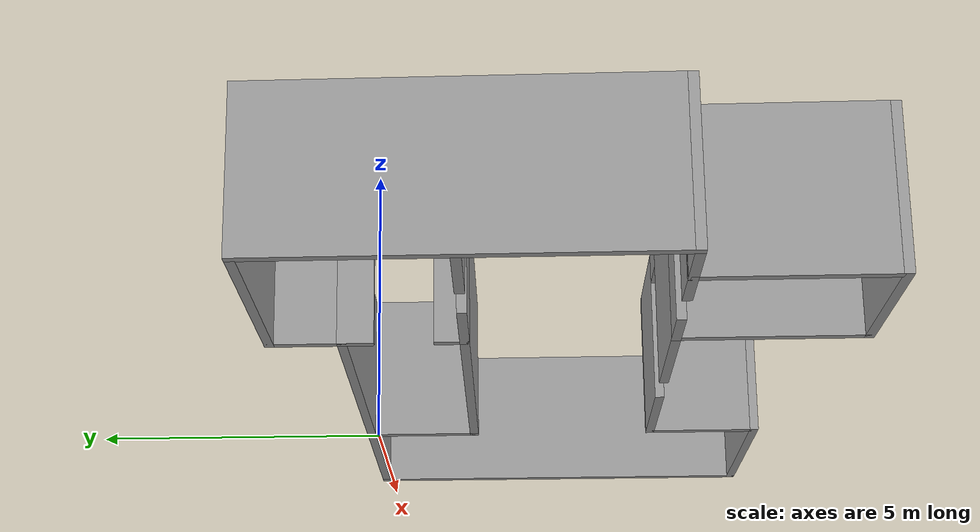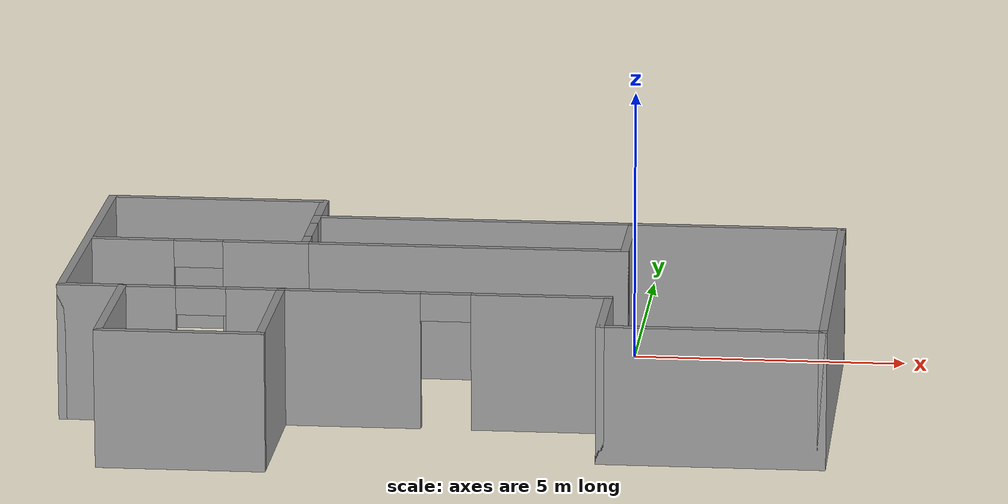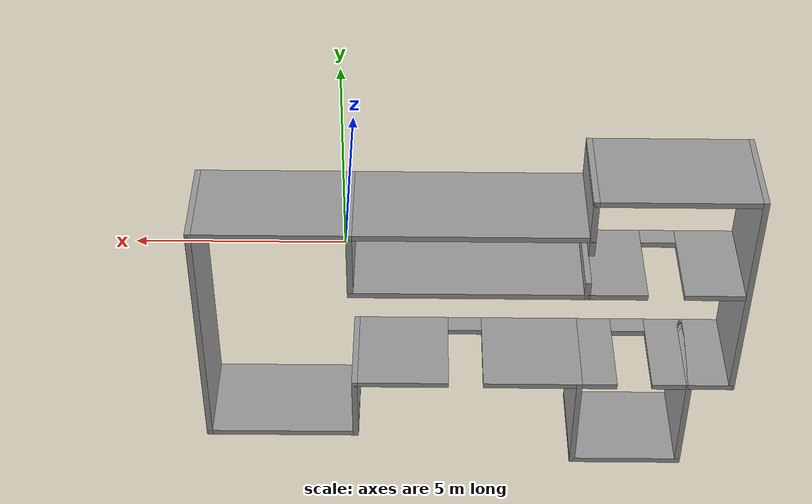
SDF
<?xml version='1.0'?>
<sdf version='1.6'>
  <model name='base'>
    <pose frame=''>-3.05362 -3.25094 0 0 -0 0</pose>
    <link name='Wall_10'>
      <collision name='Wall_10_Collision'>
        <geometry>
          <box>
            <size>4 0.15 2.5</size>
          </box>
        </geometry>
        <pose frame=''>0 0 1.25 0 -0 0</pose>
      </collision>
      <visual name='Wall_10_Visual'>
        <pose frame=''>0 0 1.25 0 -0 0</pose>
        <geometry>
          <box>
            <size>4 0.15 2.5</size>
          </box>
        </geometry>
        <material>
          <script>
            <uri>file://media/materials/scripts/gazebo.material</uri>
            <name>Gazebo/Grey</name>
          </script>
          <ambient>1 1 1 1</ambient>
        </material>
        <meta>
          <layer>0</layer>
        </meta>
      </visual>
      <pose frame=''>4.92011 3.375 0 0 -0 3.14159</pose>
    </link>
    <link name='Wall_11'>
      <collision name='Wall_11_Collision'>
        <geometry>
          <box>
            <size>2 0.15 2.5</size>
          </box>
        </geometry>
        <pose frame=''>0 0 1.25 0 -0 0</pose>
      </collision>
      <visual name='Wall_11_Visual'>
        <pose frame=''>0 0 1.25 0 -0 0</pose>
        <geometry>
          <box>
            <size>2 0.15 2.5</size>
          </box>
        </geometry>
        <material>
          <script>
            <uri>file://media/materials/scripts/gazebo.material</uri>
            <name>Gazebo/Grey</name>
          </script>
          <ambient>1 1 1 1</ambient>
        </material>
        <meta>
          <layer>0</layer>
        </meta>
      </visual>
      <pose frame=''>2.99511 2.45 0 0 0 -1.5708</pose>
    </link>
    <link name='Wall_12'>
      <collision name='Wall_12_Collision'>
        <geometry>
          <box>
            <size>6 0.15 2.5</size>
          </box>
        </geometry>
        <pose frame=''>0 0 1.25 0 -0 0</pose>
      </collision>
      <visual name='Wall_12_Visual'>
        <pose frame=''>0 0 1.25 0 -0 0</pose>
        <geometry>
          <box>
            <size>6 0.15 2.5</size>
          </box>
        </geometry>
        <material>
          <script>
            <uri>file://media/materials/scripts/gazebo.material</uri>
            <name>Gazebo/Grey</name>
          </script>
          <ambient>1 1 1 1</ambient>
        </material>
        <meta>
          <layer>0</layer>
        </meta>
      </visual>
      <pose frame=''>0.070114 1.525 0 0 -0 3.14159</pose>
    </link>
    <link name='Wall_18'>
      <collision name='Wall_18_Collision'>
        <geometry>
          <box>
            <size>2 0.15 2.5</size>
          </box>
        </geometry>
        <pose frame=''>0 0 1.25 0 -0 0</pose>
      </collision>
      <visual name='Wall_18_Visual'>
        <pose frame=''>0 0 1.25 0 -0 0</pose>
        <geometry>
          <box>
            <size>2 0.15 2.5</size>
          </box>
        </geometry>
        <material>
          <script>
            <uri>file://media/materials/scripts/gazebo.material</uri>
            <name>Gazebo/Grey</name>
          </script>
          <ambient>1 1 1 1</ambient>
        </material>
        <meta>
          <layer>0</layer>
        </meta>
      </visual>
      <pose frame=''>2.95489 -2.55 0 0 -0 1.5708</pose>
    </link>
    <link name='Wall_19'>
      <pose frame=''>0.029886 -1.625 0 0 -0 3.14159</pose>
      <visual name='Wall_19_Visual_0'>
        <pose frame=''>-1.73932 0 1.25 0 -0 0</pose>
        <geometry>
          <box>
            <size>2.52135 0.15 2.5</size>
          </box>
        </geometry>
        <material>
          <script>
            <uri>file://media/materials/scripts/gazebo.material</uri>
            <name>Gazebo/Grey</name>
          </script>
          <ambient>1 1 1 1</ambient>
        </material>
        <meta>
          <layer>0</layer>
        </meta>
      </visual>
      <collision name='Wall_19_Collision_0'>
        <geometry>
          <box>
            <size>2.52135 0.15 2.5</size>
          </box>
        </geometry>
        <pose frame=''>-1.73932 0 1.25 0 -0 0</pose>
      </collision>
      <visual name='Wall_19_Visual_1'>
        <pose frame=''>1.71068 0 1.25 0 -0 0</pose>
        <geometry>
          <box>
            <size>2.57865 0.15 2.5</size>
          </box>
        </geometry>
        <material>
          <script>
            <uri>file://media/materials/scripts/gazebo.material</uri>
            <name>Gazebo/Grey</name>
          </script>
          <ambient>1 1 1 1</ambient>
        </material>
        <meta>
          <layer>0</layer>
        </meta>
      </visual>
      <collision name='Wall_19_Collision_1'>
        <geometry>
          <box>
            <size>2.57865 0.15 2.5</size>
          </box>
        </geometry>
        <pose frame=''>1.71068 0 1.25 0 -0 0</pose>
      </collision>
      <visual name='Wall_19_Visual_2'>
        <pose frame=''>-0.028646 0 2.25 0 -0 0</pose>
        <geometry>
          <box>
            <size>0.9 0.15 0.5</size>
          </box>
        </geometry>
        <material>
          <script>
            <uri>file://media/materials/scripts/gazebo.material</uri>
            <name>Gazebo/Grey</name>
          </script>
          <ambient>1 1 1 1</ambient>
        </material>
        <meta>
          <layer>0</layer>
        </meta>
      </visual>
      <collision name='Wall_19_Collision_2'>
        <geometry>
          <box>
            <size>0.9 0.15 0.5</size>
          </box>
        </geometry>
        <pose frame=''>-0.028646 0 2.25 0 -0 0</pose>
      </collision>
    </link>
    <link name='Wall_20'>
      <collision name='Wall_20_Collision'>
        <geometry>
          <box>
            <size>3 0.15 2.5</size>
          </box>
        </geometry>
        <pose frame=''>0 0 1.25 0 -0 0</pose>
      </collision>
      <visual name='Wall_20_Visual'>
        <pose frame=''>0 0 1.25 0 -0 0</pose>
        <geometry>
          <box>
            <size>3 0.15 2.5</size>
          </box>
        </geometry>
        <material>
          <script>
            <uri>file://media/materials/scripts/gazebo.material</uri>
            <name>Gazebo/Grey</name>
          </script>
          <ambient>1 1 1 1</ambient>
        </material>
        <meta>
          <layer>0</layer>
        </meta>
      </visual>
      <pose frame=''>-2.89511 -3.05 0 0 0 -1.5708</pose>
    </link>
    <link name='Wall_21'>
      <collision name='Wall_21_Collision'>
        <geometry>
          <box>
            <size>3 0.15 2.5</size>
          </box>
        </geometry>
        <pose frame=''>0 0 1.25 0 -0 0</pose>
      </collision>
      <visual name='Wall_21_Visual'>
        <pose frame=''>0 0 1.25 0 -0 0</pose>
        <geometry>
          <box>
            <size>3 0.15 2.5</size>
          </box>
        </geometry>
        <material>
          <script>
            <uri>file://media/materials/scripts/gazebo.material</uri>
            <name>Gazebo/Grey</name>
          </script>
          <ambient>1 1 1 1</ambient>
        </material>
        <meta>
          <layer>0</layer>
        </meta>
      </visual>
      <pose frame=''>-4.32011 -4.475 0 0 -0 3.14159</pose>
    </link>
    <link name='Wall_22'>
      <collision name='Wall_22_Collision'>
        <geometry>
          <box>
            <size>3 0.15 2.5</size>
          </box>
        </geometry>
        <pose frame=''>0 0 1.25 0 -0 0</pose>
      </collision>
      <visual name='Wall_22_Visual'>
        <pose frame=''>0 0 1.25 0 -0 0</pose>
        <geometry>
          <box>
            <size>3 0.15 2.5</size>
          </box>
        </geometry>
        <material>
          <script>
            <uri>file://media/materials/scripts/gazebo.material</uri>
            <name>Gazebo/Grey</name>
          </script>
          <ambient>1 1 1 1</ambient>
        </material>
        <meta>
          <layer>0</layer>
        </meta>
      </visual>
      <pose frame=''>-5.74511 -3.05 0 0 -0 1.5708</pose>
    </link>
    <link name='Wall_23'>
      <collision name='Wall_23_Collision'>
        <geometry>
          <box>
            <size>1.25 0.15 2.5</size>
          </box>
        </geometry>
        <pose frame=''>0 0 1.25 0 -0 0</pose>
      </collision>
      <visual name='Wall_23_Visual'>
        <pose frame=''>0 0 1.25 0 -0 0</pose>
        <geometry>
          <box>
            <size>1.25 0.15 2.5</size>
          </box>
        </geometry>
        <material>
          <script>
            <uri>file://media/materials/scripts/gazebo.material</uri>
            <name>Gazebo/Grey</name>
          </script>
          <ambient>1 1 1 1</ambient>
        </material>
        <meta>
          <layer>0</layer>
        </meta>
      </visual>
      <pose frame=''>-6.29511 -1.625 0 0 -0 3.14159</pose>
    </link>
    <link name='Wall_24'>
      <collision name='Wall_24_Collision'>
        <geometry>
          <box>
            <size>6.25 0.15 2.5</size>
          </box>
        </geometry>
        <pose frame=''>0 0 1.25 0 -0 0</pose>
      </collision>
      <visual name='Wall_24_Visual'>
        <pose frame=''>0 0 1.25 0 -0 0</pose>
        <geometry>
          <box>
            <size>6.25 0.15 2.5</size>
          </box>
        </geometry>
        <material>
          <script>
            <uri>file://media/materials/scripts/gazebo.material</uri>
            <name>Gazebo/Grey</name>
          </script>
          <ambient>1 1 1 1</ambient>
        </material>
        <meta>
          <layer>0</layer>
        </meta>
      </visual>
      <pose frame=''>-6.84511 1.425 0 0 -0 1.5708</pose>
    </link>
    <link name='Wall_28'>
      <pose frame=''>-4.32011 -1.625 0 0 -0 0</pose>
      <visual name='Wall_28_Visual_0'>
        <pose frame=''>-0.978057 0 1.25 0 -0 0</pose>
        <geometry>
          <box>
            <size>1.04389 0.15 2.5</size>
          </box>
        </geometry>
        <material>
          <script>
            <uri>file://media/materials/scripts/gazebo.material</uri>
            <name>Gazebo/Grey</name>
          </script>
          <ambient>1 1 1 1</ambient>
        </material>
        <meta>
          <layer>0</layer>
        </meta>
      </visual>
      <collision name='Wall_28_Collision_0'>
        <geometry>
          <box>
            <size>1.04389 0.15 2.5</size>
          </box>
        </geometry>
        <pose frame=''>-0.978057 0 1.25 0 -0 0</pose>
      </collision>
      <visual name='Wall_28_Visual_1'>
        <pose frame=''>0.971943 0 1.25 0 -0 0</pose>
        <geometry>
          <box>
            <size>1.05611 0.15 2.5</size>
          </box>
        </geometry>
        <material>
          <script>
            <uri>file://media/materials/scripts/gazebo.material</uri>
            <name>Gazebo/Grey</name>
          </script>
          <ambient>1 1 1 1</ambient>
        </material>
        <meta>
          <layer>0</layer>
        </meta>
      </visual>
      <collision name='Wall_28_Collision_1'>
        <geometry>
          <box>
            <size>1.05611 0.15 2.5</size>
          </box>
        </geometry>
        <pose frame=''>0.971943 0 1.25 0 -0 0</pose>
      </collision>
      <visual name='Wall_28_Visual_2'>
        <pose frame=''>-0.006113 0 2.25 0 -0 0</pose>
        <geometry>
          <box>
            <size>0.9 0.15 0.5</size>
          </box>
        </geometry>
        <material>
          <script>
            <uri>file://media/materials/scripts/gazebo.material</uri>
            <name>Gazebo/Grey</name>
          </script>
          <ambient>1 1 1 1</ambient>
        </material>
        <meta>
          <layer>0</layer>
        </meta>
      </visual>
      <collision name='Wall_28_Collision_2'>
        <geometry>
          <box>
            <size>0.9 0.15 0.5</size>
          </box>
        </geometry>
        <pose frame=''>-0.006113 0 2.25 0 -0 0</pose>
      </collision>
    </link>
    <link name='Wall_32'>
      <pose frame=''>-2.85489 2.45 0 0 -0 1.5708</pose>
      <visual name='Wall_32_Visual_0'>
        <pose frame=''>-0.730805 0 1.25 0 -0 0</pose>
        <geometry>
          <box>
            <size>0.53839 0.15 2.5</size>
          </box>
        </geometry>
        <material>
          <script>
            <uri>file://media/materials/scripts/gazebo.material</uri>
            <name>Gazebo/Grey</name>
          </script>
          <ambient>1 1 1 1</ambient>
        </material>
        <meta>
          <layer>0</layer>
        </meta>
      </visual>
      <collision name='Wall_32_Collision_0'>
        <geometry>
          <box>
            <size>0.53839 0.15 2.5</size>
          </box>
        </geometry>
        <pose frame=''>-0.730805 0 1.25 0 -0 0</pose>
      </collision>
      <visual name='Wall_32_Visual_1'>
        <pose frame=''>0.719195 0 1.25 0 -0 0</pose>
        <geometry>
          <box>
            <size>0.56161 0.15 2.5</size>
          </box>
        </geometry>
        <material>
          <script>
            <uri>file://media/materials/scripts/gazebo.material</uri>
            <name>Gazebo/Grey</name>
          </script>
          <ambient>1 1 1 1</ambient>
        </material>
        <meta>
          <layer>0</layer>
        </meta>
      </visual>
      <collision name='Wall_32_Collision_1'>
        <geometry>
          <box>
            <size>0.56161 0.15 2.5</size>
          </box>
        </geometry>
        <pose frame=''>0.719195 0 1.25 0 -0 0</pose>
      </collision>
      <visual name='Wall_32_Visual_2'>
        <pose frame=''>-0.01161 0 2.25 0 -0 0</pose>
        <geometry>
          <box>
            <size>0.9 0.15 0.5</size>
          </box>
        </geometry>
        <material>
          <script>
            <uri>file://media/materials/scripts/gazebo.material</uri>
            <name>Gazebo/Grey</name>
          </script>
          <ambient>1 1 1 1</ambient>
        </material>
        <meta>
          <layer>0</layer>
        </meta>
      </visual>
      <collision name='Wall_32_Collision_2'>
        <geometry>
          <box>
            <size>0.9 0.15 0.5</size>
          </box>
        </geometry>
        <pose frame=''>-0.01161 0 2.25 0 -0 0</pose>
      </collision>
    </link>
    <link name='Wall_33'>
      <collision name='Wall_33_Collision'>
        <geometry>
          <box>
            <size>6 0.15 2.5</size>
          </box>
        </geometry>
        <pose frame=''>0 0 1.25 0 -0 0</pose>
      </collision>
      <visual name='Wall_33_Visual'>
        <pose frame=''>0 0 1.25 0 -0 0</pose>
        <geometry>
          <box>
            <size>6 0.15 2.5</size>
          </box>
        </geometry>
        <material>
          <script>
            <uri>file://media/materials/scripts/gazebo.material</uri>
            <name>Gazebo/Grey</name>
          </script>
          <ambient>1 1 1 1</ambient>
        </material>
        <meta>
          <layer>0</layer>
        </meta>
      </visual>
      <pose frame=''>0.070114 3.375 0 0 -0 0</pose>
    </link>
    <link name='Wall_35'>
      <collision name='Wall_35_Collision'>
        <geometry>
          <box>
            <size>1.25 0.15 2.5</size>
          </box>
        </geometry>
        <pose frame=''>0 0 1.25 0 -0 0</pose>
      </collision>
      <visual name='Wall_35_Visual'>
        <pose frame=''>0 0 1.25 0 -0 0</pose>
        <geometry>
          <box>
            <size>1.25 0.15 2.5</size>
          </box>
        </geometry>
        <material>
          <script>
            <uri>file://media/materials/scripts/gazebo.material</uri>
            <name>Gazebo/Grey</name>
          </script>
          <ambient>1 1 1 1</ambient>
        </material>
        <meta>
          <layer>0</layer>
        </meta>
      </visual>
      <pose frame=''>-2.85489 3.925 0 0 -0 1.5708</pose>
    </link>
    <link name='Wall_36'>
      <collision name='Wall_36_Collision'>
        <geometry>
          <box>
            <size>4 0.15 2.5</size>
          </box>
        </geometry>
        <pose frame=''>0 0 1.25 0 -0 0</pose>
      </collision>
      <visual name='Wall_36_Visual'>
        <pose frame=''>0 0 1.25 0 -0 0</pose>
        <geometry>
          <box>
            <size>4 0.15 2.5</size>
          </box>
        </geometry>
        <material>
          <script>
            <uri>file://media/materials/scripts/gazebo.material</uri>
            <name>Gazebo/Grey</name>
          </script>
          <ambient>1 1 1 1</ambient>
        </material>
        <meta>
          <layer>0</layer>
        </meta>
      </visual>
      <pose frame=''>-4.77989 4.475 0 0 -0 3.14159</pose>
    </link>
    <link name='Wall_39'>
      <pose frame=''>-4.77989 1.525 0 0 -0 3.14159</pose>
      <visual name='Wall_39_Visual_0'>
        <pose frame=''>-1.21047 0 1.25 0 -0 0</pose>
        <geometry>
          <box>
            <size>1.57907 0.15 2.5</size>
          </box>
        </geometry>
        <material>
          <script>
            <uri>file://media/materials/scripts/gazebo.material</uri>
            <name>Gazebo/Grey</name>
          </script>
          <ambient>1 1 1 1</ambient>
        </material>
        <meta>
          <layer>0</layer>
        </meta>
      </visual>
      <collision name='Wall_39_Collision_0'>
        <geometry>
          <box>
            <size>1.57907 0.15 2.5</size>
          </box>
        </geometry>
        <pose frame=''>-1.21047 0 1.25 0 -0 0</pose>
      </collision>
      <visual name='Wall_39_Visual_1'>
        <pose frame=''>1.23953 0 1.25 0 -0 0</pose>
        <geometry>
          <box>
            <size>1.52093 0.15 2.5</size>
          </box>
        </geometry>
        <material>
          <script>
            <uri>file://media/materials/scripts/gazebo.material</uri>
            <name>Gazebo/Grey</name>
          </script>
          <ambient>1 1 1 1</ambient>
        </material>
        <meta>
          <layer>0</layer>
        </meta>
      </visual>
      <collision name='Wall_39_Collision_1'>
        <geometry>
          <box>
            <size>1.52093 0.15 2.5</size>
          </box>
        </geometry>
        <pose frame=''>1.23953 0 1.25 0 -0 0</pose>
      </collision>
      <visual name='Wall_39_Visual_2'>
        <pose frame=''>0.029066 0 2.25 0 -0 0</pose>
        <geometry>
          <box>
            <size>0.9 0.15 0.5</size>
          </box>
        </geometry>
        <material>
          <script>
            <uri>file://media/materials/scripts/gazebo.material</uri>
            <name>Gazebo/Grey</name>
          </script>
          <ambient>1 1 1 1</ambient>
        </material>
        <meta>
          <layer>0</layer>
        </meta>
      </visual>
      <collision name='Wall_39_Collision_2'>
        <geometry>
          <box>
            <size>0.9 0.15 0.5</size>
          </box>
        </geometry>
        <pose frame=''>0.029066 0 2.25 0 -0 0</pose>
      </collision>
    </link>
    <link name='Wall_8'>
      <collision name='Wall_8_Collision'>
        <geometry>
          <box>
            <size>4.04023 0.15 2.5</size>
          </box>
        </geometry>
        <pose frame=''>0 0 1.25 0 -0 0</pose>
      </collision>
      <visual name='Wall_8_Visual'>
        <pose frame=''>0 0 1.25 0 -0 0</pose>
        <geometry>
          <box>
            <size>4.04023 0.15 2.5</size>
          </box>
        </geometry>
        <material>
          <script>
            <uri>file://media/materials/scripts/gazebo.material</uri>
            <name>Gazebo/Grey</name>
          </script>
          <ambient>1 1 1 1</ambient>
        </material>
        <meta>
          <layer>0</layer>
        </meta>
      </visual>
      <pose frame=''>4.9 -3.475 0 0 -0 0</pose>
    </link>
    <link name='Wall_9'>
      <collision name='Wall_9_Collision'>
        <geometry>
          <box>
            <size>7 0.15 2.5</size>
          </box>
        </geometry>
        <pose frame=''>0 0 1.25 0 -0 0</pose>
      </collision>
      <visual name='Wall_9_Visual'>
        <pose frame=''>0 0 1.25 0 -0 0</pose>
        <geometry>
          <box>
            <size>7 0.15 2.5</size>
          </box>
        </geometry>
        <material>
          <script>
            <uri>file://media/materials/scripts/gazebo.material</uri>
            <name>Gazebo/Grey</name>
          </script>
          <ambient>1 1 1 1</ambient>
        </material>
        <meta>
          <layer>0</layer>
        </meta>
      </visual>
      <pose frame=''>6.84511 -0.05 0 0 -0 1.5708</pose>
    </link>
    <static>1</static>
  </model>
</sdf>
